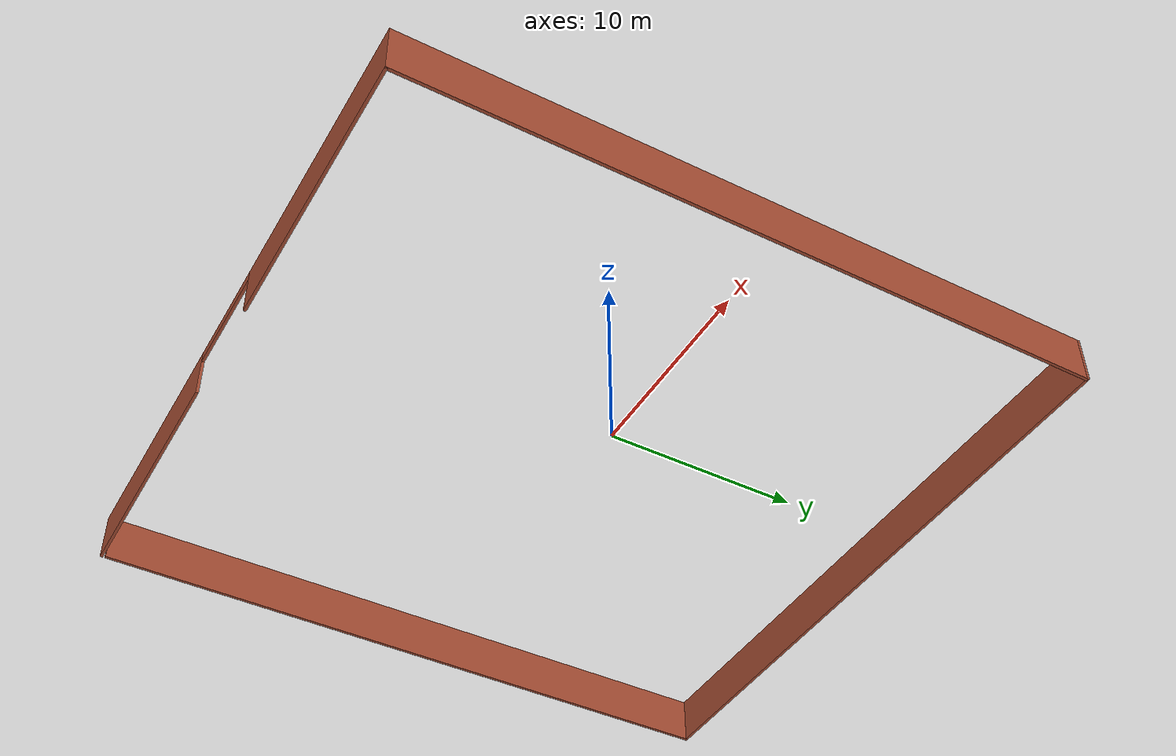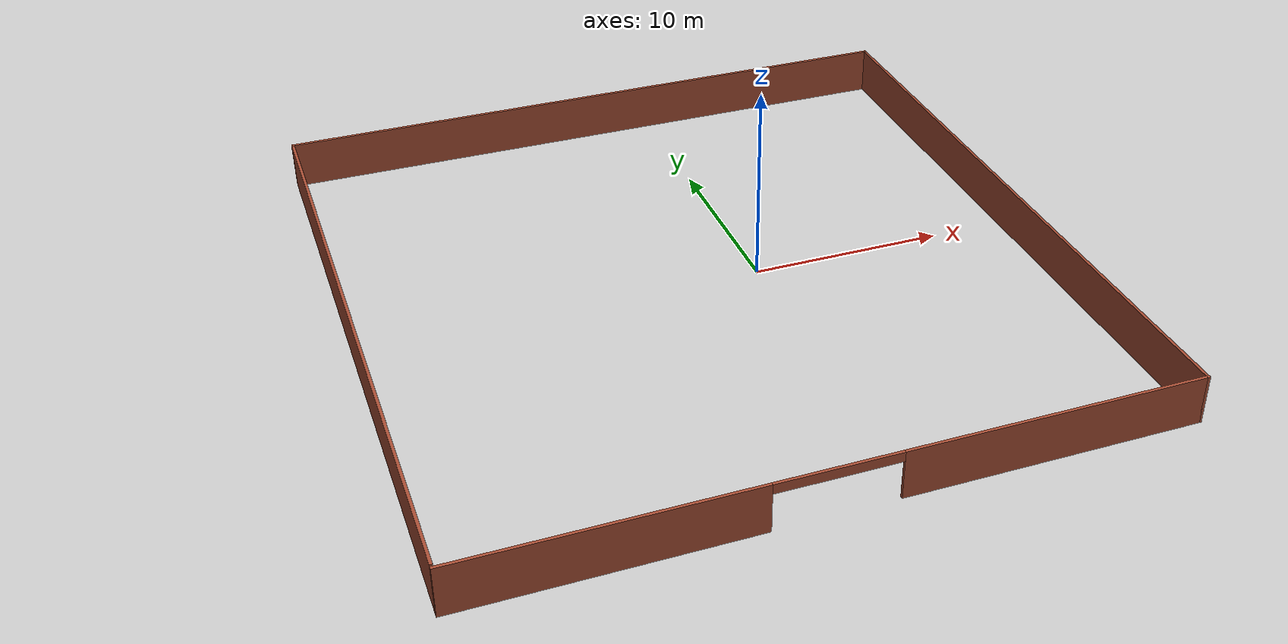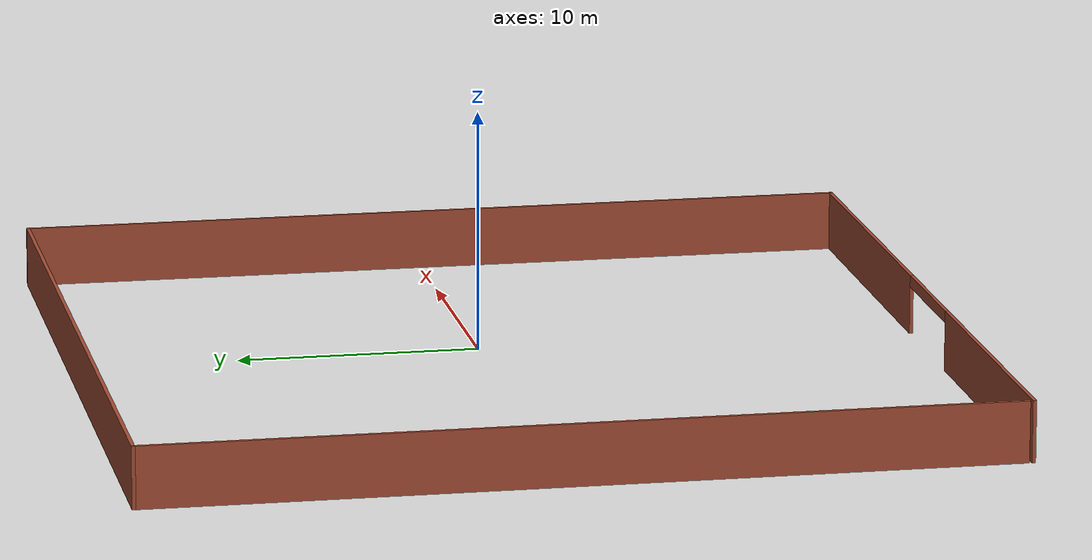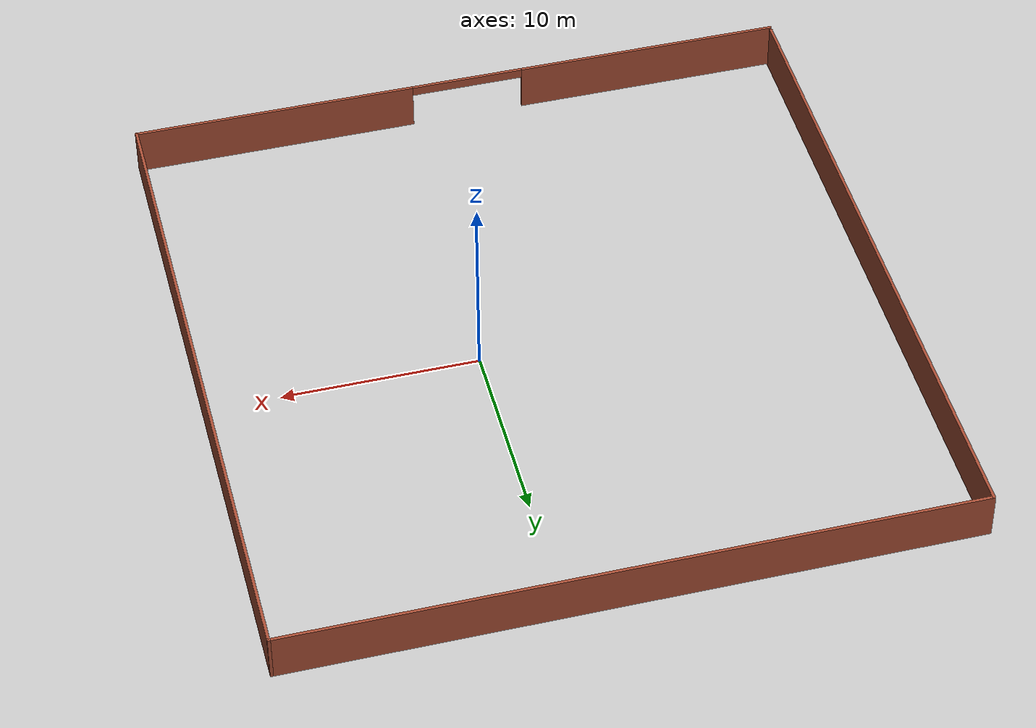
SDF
<?xml version='1.0'?>
<sdf version='1.6'>
  <model name='workbuilding'>
    <pose frame=''>-3.3349 -0.571405 0 0 -0 0</pose>
    <link name='Wall_4'>
      <pose frame=''>0 -17.55 0 0 -0 0</pose>
      <visual name='Wall_4_Visual_0'>
        <pose frame=''>-10.3241 0 1.25 0 -0 0</pose>
        <geometry>
          <box>
            <size>13.8517 0.15 2.5</size>
          </box>
        </geometry>
        <material>
          <script>
            <uri>file://media/materials/scripts/gazebo.material</uri>
            <name>Gazebo/Bricks</name>
          </script>
          <ambient>1 1 1 1</ambient>
        </material>
        <meta>
          <layer>0</layer>
        </meta>
      </visual>
      <collision name='Wall_4_Collision_0'>
        <geometry>
          <box>
            <size>13.8517 0.15 2.5</size>
          </box>
        </geometry>
        <pose frame=''>-10.3241 0 1.25 0 -0 0</pose>
      </collision>
      <visual name='Wall_4_Visual_1'>
        <pose frame=''>9.8737 0 1.25 0 -0 0</pose>
        <geometry>
          <box>
            <size>14.7526 0.15 2.5</size>
          </box>
        </geometry>
        <material>
          <script>
            <uri>file://media/materials/scripts/gazebo.material</uri>
            <name>Gazebo/Bricks</name>
          </script>
          <ambient>1 1 1 1</ambient>
        </material>
        <meta>
          <layer>0</layer>
        </meta>
      </visual>
      <collision name='Wall_4_Collision_1'>
        <geometry>
          <box>
            <size>14.7526 0.15 2.5</size>
          </box>
        </geometry>
        <pose frame=''>9.8737 0 1.25 0 -0 0</pose>
      </collision>
      <visual name='Wall_4_Visual_2'>
        <pose frame=''>-0.450441 0 2.25 0 -0 0</pose>
        <geometry>
          <box>
            <size>5.8957 0.15 0.5</size>
          </box>
        </geometry>
        <material>
          <script>
            <uri>file://media/materials/scripts/gazebo.material</uri>
            <name>Gazebo/Bricks</name>
          </script>
          <ambient>1 1 1 1</ambient>
        </material>
        <meta>
          <layer>0</layer>
        </meta>
      </visual>
      <collision name='Wall_4_Collision_2'>
        <geometry>
          <box>
            <size>5.8957 0.15 0.5</size>
          </box>
        </geometry>
        <pose frame=''>-0.450441 0 2.25 0 -0 0</pose>
      </collision>
    </link>
    <link name='Wall_5'>
      <collision name='Wall_5_Collision'>
        <geometry>
          <box>
            <size>35.25 0.15 2.5</size>
          </box>
        </geometry>
        <pose frame=''>0 0 1.25 0 -0 0</pose>
      </collision>
      <visual name='Wall_5_Visual'>
        <pose frame=''>0 0 1.25 0 -0 0</pose>
        <geometry>
          <box>
            <size>35.25 0.15 2.5</size>
          </box>
        </geometry>
        <material>
          <script>
            <uri>file://media/materials/scripts/gazebo.material</uri>
            <name>Gazebo/Bricks</name>
          </script>
          <ambient>1 1 1 1</ambient>
        </material>
        <meta>
          <layer>0</layer>
        </meta>
      </visual>
      <pose frame=''>17.175 0 0 0 -0 1.5708</pose>
    </link>
    <link name='Wall_6'>
      <collision name='Wall_6_Collision'>
        <geometry>
          <box>
            <size>34.5 0.15 2.5</size>
          </box>
        </geometry>
        <pose frame=''>0 0 1.25 0 -0 0</pose>
      </collision>
      <visual name='Wall_6_Visual'>
        <pose frame=''>0 0 1.25 0 -0 0</pose>
        <geometry>
          <box>
            <size>34.5 0.15 2.5</size>
          </box>
        </geometry>
        <material>
          <script>
            <uri>file://media/materials/scripts/gazebo.material</uri>
            <name>Gazebo/Bricks</name>
          </script>
          <ambient>1 1 1 1</ambient>
        </material>
        <meta>
          <layer>0</layer>
        </meta>
      </visual>
      <pose frame=''>0 17.55 0 0 -0 3.14159</pose>
    </link>
    <link name='Wall_7'>
      <collision name='Wall_7_Collision'>
        <geometry>
          <box>
            <size>35 0.15 2.5</size>
          </box>
        </geometry>
        <pose frame=''>0 0 1.25 0 -0 0</pose>
      </collision>
      <visual name='Wall_7_Visual'>
        <pose frame=''>0 0 1.25 0 -0 0</pose>
        <geometry>
          <box>
            <size>35 0.15 2.5</size>
          </box>
        </geometry>
        <material>
          <script>
            <uri>file://media/materials/scripts/gazebo.material</uri>
            <name>Gazebo/Bricks</name>
          </script>
          <ambient>1 1 1 1</ambient>
        </material>
        <meta>
          <layer>0</layer>
        </meta>
      </visual>
      <pose frame=''>-17.175 0.125 0 0 0 -1.5708</pose>
    </link>
    <static>1</static>
  </model>
</sdf>
